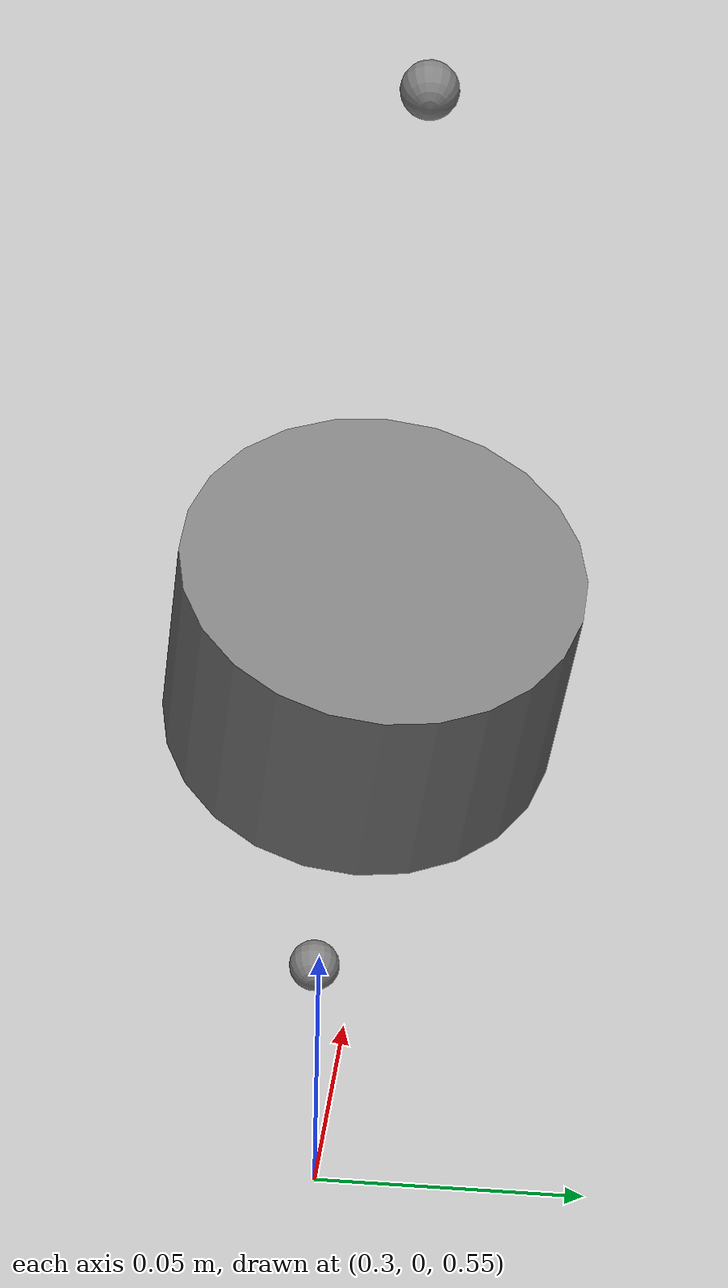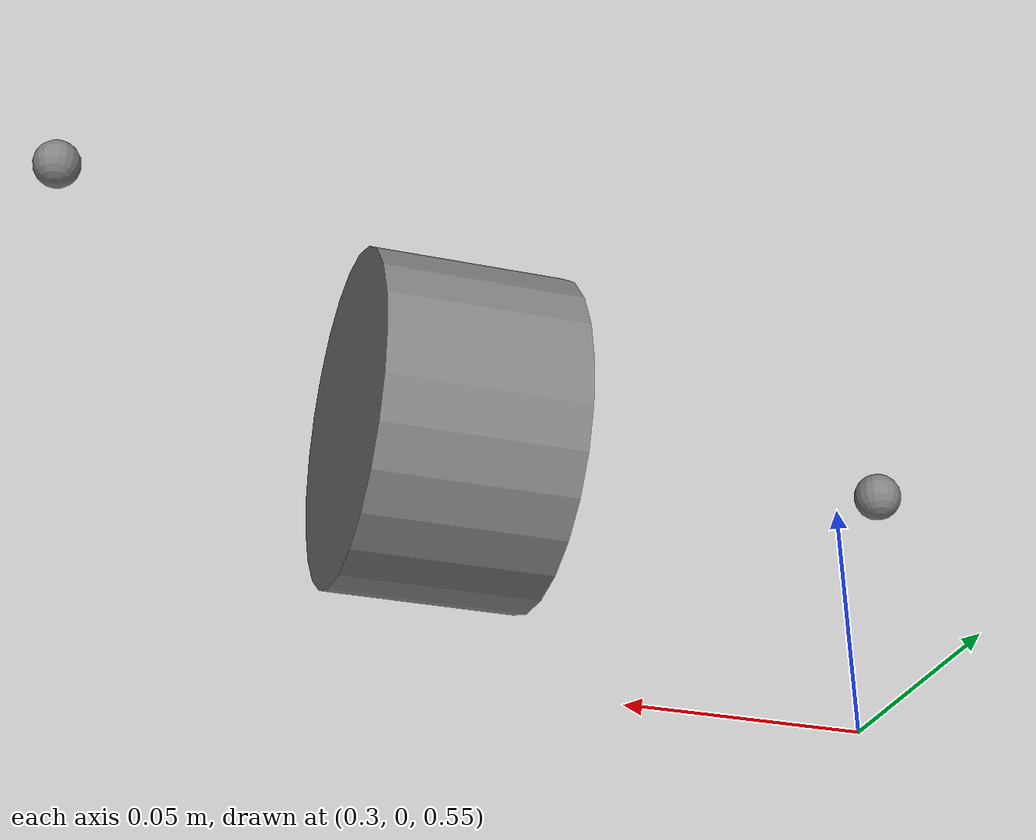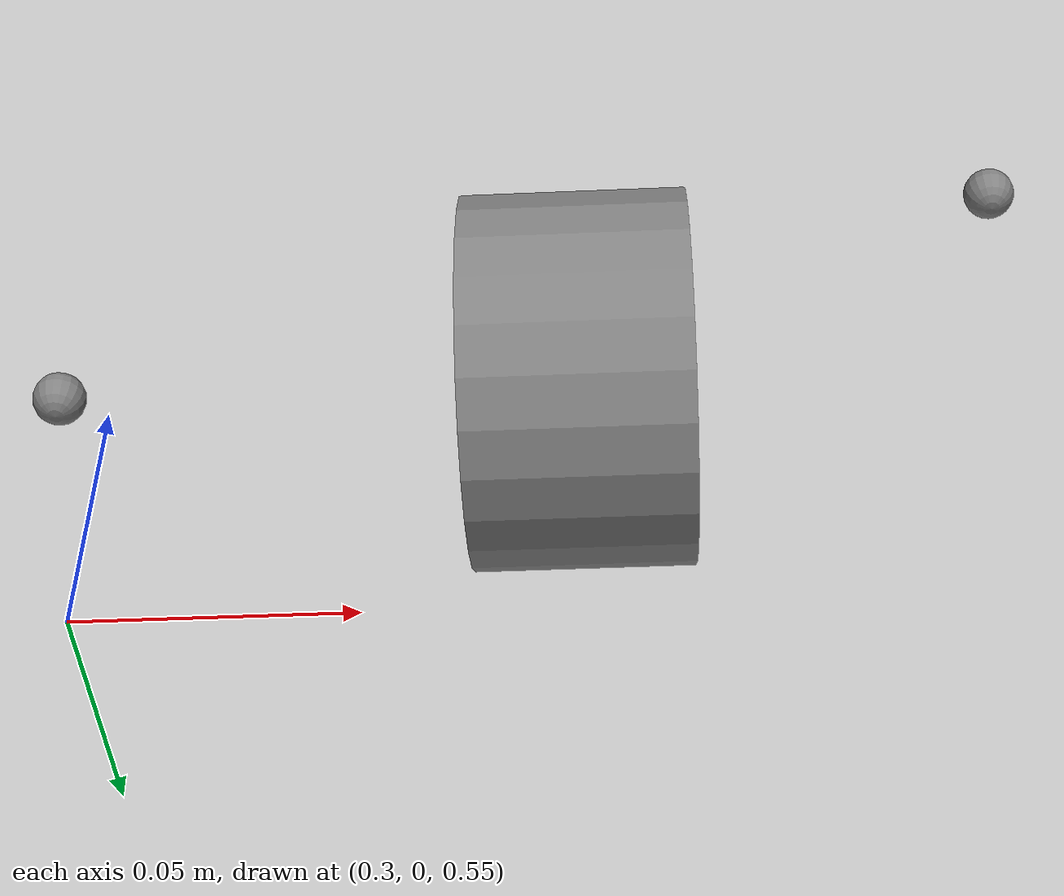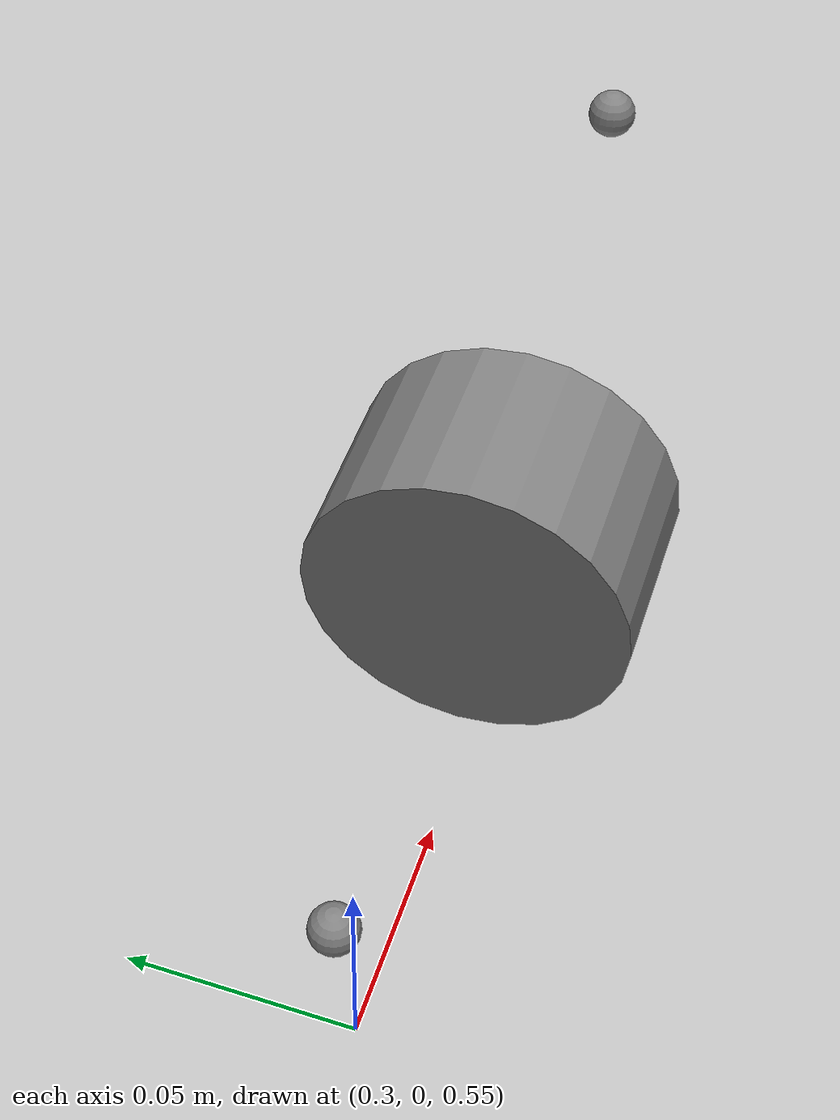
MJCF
<mujoco model="Yaskawa_gp4">

<option>
    <flag multiccd="enable"/>
  </option>
  <compiler angle="radian" meshdir = "meshes"/>
  <worldbody>

    <body name="link_1" pos="0 0 0.33">
      <inertial pos="0.058962 0.24363 -0.018725" quat="0.154737 0.465754 0.464201 0.737324" mass="37.265" diaginertia="1.20179 1.05429 0.8459"/>
      <joint name="joint_1" pos="0 0 0" axis="0 0 1"/>

      <body name="link_2">
        <inertial pos="3.5083e-05 0.39008 0.15036" quat="0.490897 0.516951 -0.510135 0.48119" mass="22.632" diaginertia="1.83109 1.7745 0.150015"/>
        <joint name="joint_2" pos="0 0 0" axis="0 1 0"/>

        <body name="link_3" pos="0 0 0.26">
          <inertial pos="0.086423 0.14427 -0.035793" quat="0.632481 0.663767 0.0137265 -0.398989" mass="28.467" diaginertia="0.776076 0.668163 0.43752"/>
          <joint name="joint_3" pos="0 0 0" axis="0 -1 0" range="-0.2 0.7"/>

          <body name="link_4" pos="0.29 0 0.015">
            <inertial pos="0.37337 0.00033491 0.012656" quat="0.509567 0.48893 0.476159 0.523985" mass="7.629" diaginertia="0.480722 0.478635 0.0159838"/>
            <joint name="joint_4" pos="0 0 0" axis="-1 0 0"/>

            <body name="link_5">
              <inertial pos="0.062818 3.3289e-05 0.0048991" quat="0.680253 -0.192363 -0.192195 0.680671" mass="2.5794" diaginertia="0.021382 0.0161834 0.0124506"/>
              <joint name="joint_5" pos="0 0 0" axis="0 -1 0"/>

              <body name="link_6">
                <inertial pos="0.0001688 -0.000630122 -0.00826524" quat="-0.00317061 0.707104 0.000914425 0.707101" mass="0.10812" diaginertia="0.000179275 9.31201e-05 9.11296e-05"/>

                <geom size="0.035 0.0205" pos="0.09725 0 0" quat="0.707107 0 0.707107 0" type="cylinder"/>

                <site name="attachment_site" pos="-0.0 0.0 0.0" quat="0 0 0 1"/>
                <site name="eef_site" pos="0.18 0.00 0.05" quat="0 -0.7071068 -0.7071068 0"/>
              </body>
            </body>
          </body>
        </body>
      </body>
    </body>
  </worldbody>
</mujoco>
